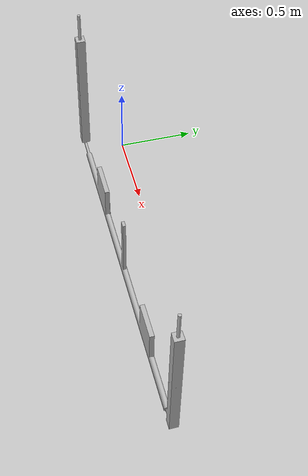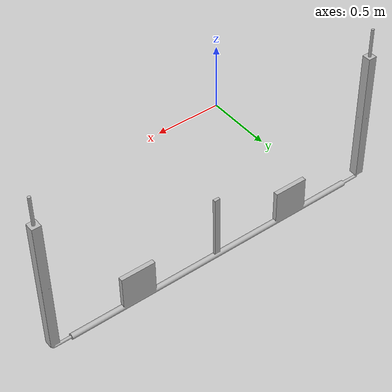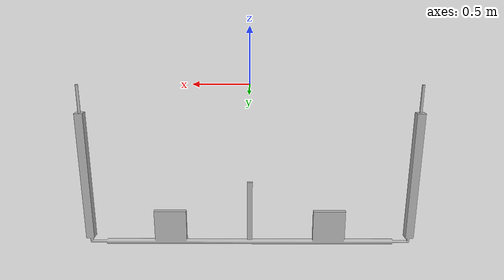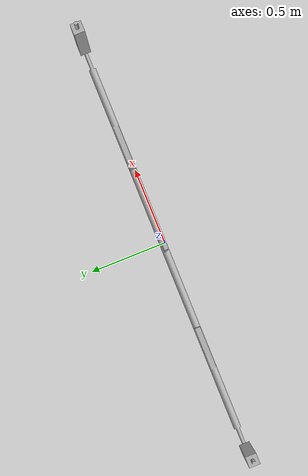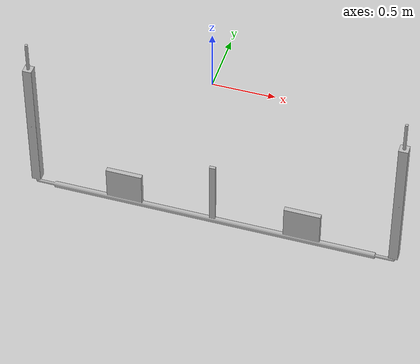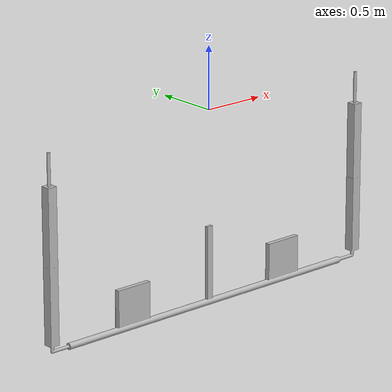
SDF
<?xml version="1.0" encoding="UTF-8"?>

<sdf version="1.10">
    <model name="Gate">
        <cast_shadows>false</cast_shadows>
        <link name="link">
            <cast_shadows>false</cast_shadows>
            <collision name="collision">
                <geometry>
                    <mesh>
                        <uri>meshes/Robosubgate2025.obj</uri>
                        <scale>1 1 1</scale>
                    </mesh>
                </geometry>
            </collision>

            <visual name="visual">
                <geometry>
                    <mesh>
                        <uri>meshes/Robosubgate2025.obj</uri>
                        <scale>1 1 1</scale>
                    </mesh>
                </geometry>
                <cast_shadows>false</cast_shadows>
            </visual>
        </link>
        <static>true</static>
    </model>
</sdf>
